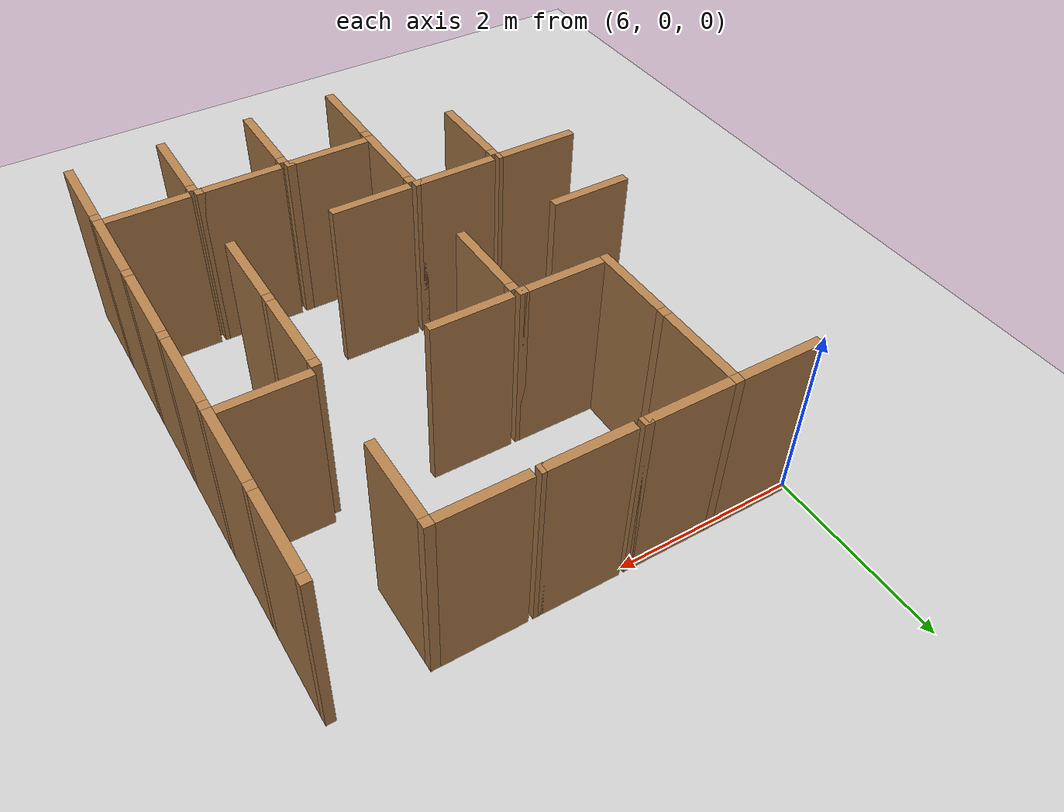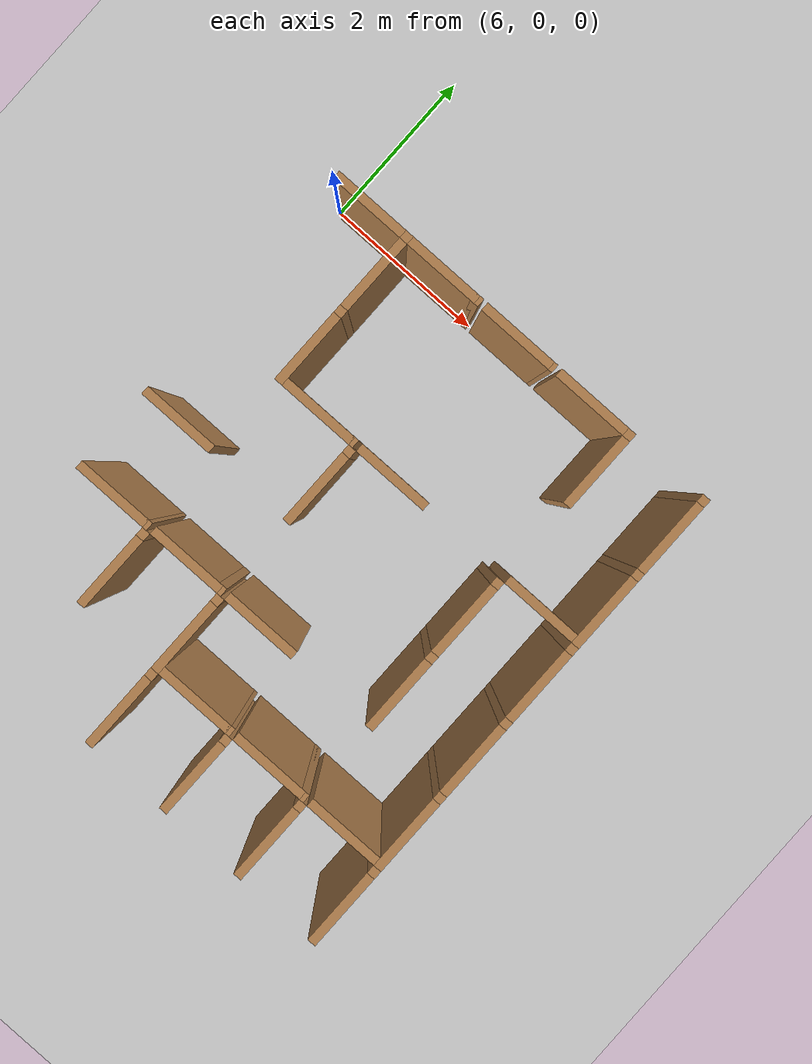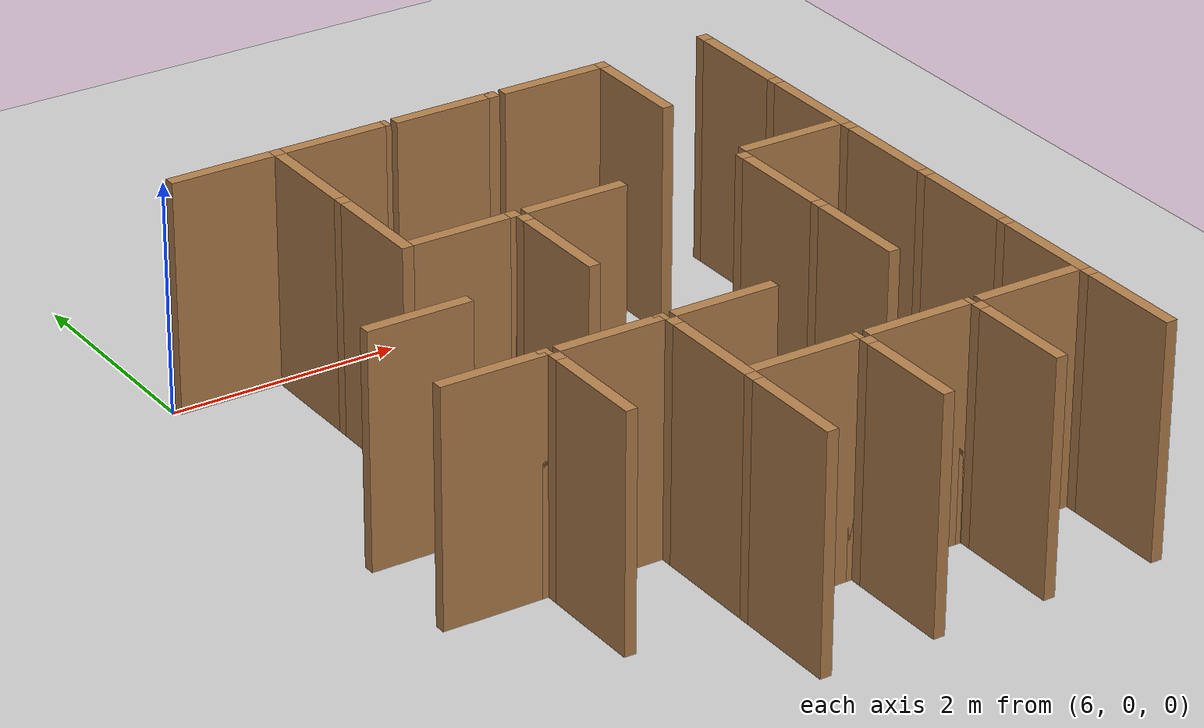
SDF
<sdf version="1.6">
 <world name="default">
  <include><uri>model://sun</uri></include>
  <model name="ground_plane">
   <static>true</static>
   <link name="link">
    <collision name="collision"><geometry><plane><size>12.0 12.0</size></plane></geometry></collision>
    <visual name="visual">
     <cast_shadows>false</cast_shadows>
     <geometry><plane><size>12.0 12.0</size></plane></geometry>
     <material>
      <script><uri>file://media/materials/scripts/gazebo.material</uri><name>Gazebo/Grey</name></script>
     </material>
    </visual>
   </link>
   <pose>6.0 -6.0 0 0 0 0</pose>
  </model>
  <model name="vwall_0_7">
   <pose>7.0 -0.5 1.0 0 0 0</pose>
   <link name="link">
    <collision name="collision"><geometry><box><size>0.1 0.9 2</size></box></geometry></collision>
    <visual name="visual">
     <geometry><box><size>0.1 0.9 2</size></box></geometry>
     <material>
      <script><uri>file://media/materials/scripts/gazebo.material</uri><name>Gazebo/Wood</name></script>
     </material>
    </visual>
   </link>
  </model>
  <model name="joint_7.0_0.0">
   <pose>7.0 0.0 1.0 0 0 0</pose>
   <link name="link">
    <collision name="collision"><geometry><box><size>0.1 0.1 2</size></box></geometry></collision>
    <visual name="visual">
     <geometry><box><size>0.1 0.1 2</size></box></geometry>
     <material>
      <script><uri>file://media/materials/scripts/gazebo.material</uri><name>Gazebo/Wood</name></script>
     </material>
    </visual>
   </link>
  </model>
  <model name="vwall_0_10">
   <pose>10.0 -0.5 1.0 0 0 0</pose>
   <link name="link">
    <collision name="collision"><geometry><box><size>0.1 0.9 2</size></box></geometry></collision>
    <visual name="visual">
     <geometry><box><size>0.1 0.9 2</size></box></geometry>
     <material>
      <script><uri>file://media/materials/scripts/gazebo.material</uri><name>Gazebo/Wood</name></script>
     </material>
    </visual>
   </link>
  </model>
  <model name="joint_10.0_0.0">
   <pose>10.0 0.0 1.0 0 0 0</pose>
   <link name="link">
    <collision name="collision"><geometry><box><size>0.1 0.1 2</size></box></geometry></collision>
    <visual name="visual">
     <geometry><box><size>0.1 0.1 2</size></box></geometry>
     <material>
      <script><uri>file://media/materials/scripts/gazebo.material</uri><name>Gazebo/Wood</name></script>
     </material>
    </visual>
   </link>
  </model>
  <model name="vwall_0_11">
   <pose>11.0 -0.5 1.0 0 0 0</pose>
   <link name="link">
    <collision name="collision"><geometry><box><size>0.1 0.9 2</size></box></geometry></collision>
    <visual name="visual">
     <geometry><box><size>0.1 0.9 2</size></box></geometry>
     <material>
      <script><uri>file://media/materials/scripts/gazebo.material</uri><name>Gazebo/Wood</name></script>
     </material>
    </visual>
   </link>
  </model>
  <model name="joint_11.0_0.0">
   <pose>11.0 0.0 1.0 0 0 0</pose>
   <link name="link">
    <collision name="collision"><geometry><box><size>0.1 0.1 2</size></box></geometry></collision>
    <visual name="visual">
     <geometry><box><size>0.1 0.1 2</size></box></geometry>
     <material>
      <script><uri>file://media/materials/scripts/gazebo.material</uri><name>Gazebo/Wood</name></script>
     </material>
    </visual>
   </link>
  </model>
  <model name="vwall_1_7">
   <pose>7.0 -1.5 1.0 0 0 0</pose>
   <link name="link">
    <collision name="collision"><geometry><box><size>0.1 0.9 2</size></box></geometry></collision>
    <visual name="visual">
     <geometry><box><size>0.1 0.9 2</size></box></geometry>
     <material>
      <script><uri>file://media/materials/scripts/gazebo.material</uri><name>Gazebo/Wood</name></script>
     </material>
    </visual>
   </link>
  </model>
  <model name="joint_7.0_-1.0">
   <pose>7.0 -1.0 1.0 0 0 0</pose>
   <link name="link">
    <collision name="collision"><geometry><box><size>0.1 0.1 2</size></box></geometry></collision>
    <visual name="visual">
     <geometry><box><size>0.1 0.1 2</size></box></geometry>
     <material>
      <script><uri>file://media/materials/scripts/gazebo.material</uri><name>Gazebo/Wood</name></script>
     </material>
    </visual>
   </link>
  </model>
  <model name="vwall_1_11">
   <pose>11.0 -1.5 1.0 0 0 0</pose>
   <link name="link">
    <collision name="collision"><geometry><box><size>0.1 0.9 2</size></box></geometry></collision>
    <visual name="visual">
     <geometry><box><size>0.1 0.9 2</size></box></geometry>
     <material>
      <script><uri>file://media/materials/scripts/gazebo.material</uri><name>Gazebo/Wood</name></script>
     </material>
    </visual>
   </link>
  </model>
  <model name="joint_11.0_-1.0">
   <pose>11.0 -1.0 1.0 0 0 0</pose>
   <link name="link">
    <collision name="collision"><geometry><box><size>0.1 0.1 2</size></box></geometry></collision>
    <visual name="visual">
     <geometry><box><size>0.1 0.1 2</size></box></geometry>
     <material>
      <script><uri>file://media/materials/scripts/gazebo.material</uri><name>Gazebo/Wood</name></script>
     </material>
    </visual>
   </link>
  </model>
  <model name="vwall_2_8">
   <pose>8.0 -2.5 1.0 0 0 0</pose>
   <link name="link">
    <collision name="collision"><geometry><box><size>0.1 0.9 2</size></box></geometry></collision>
    <visual name="visual">
     <geometry><box><size>0.1 0.9 2</size></box></geometry>
     <material>
      <script><uri>file://media/materials/scripts/gazebo.material</uri><name>Gazebo/Wood</name></script>
     </material>
    </visual>
   </link>
  </model>
  <model name="joint_8.0_-2.0">
   <pose>8.0 -2.0 1.0 0 0 0</pose>
   <link name="link">
    <collision name="collision"><geometry><box><size>0.1 0.1 2</size></box></geometry></collision>
    <visual name="visual">
     <geometry><box><size>0.1 0.1 2</size></box></geometry>
     <material>
      <script><uri>file://media/materials/scripts/gazebo.material</uri><name>Gazebo/Wood</name></script>
     </material>
    </visual>
   </link>
  </model>
  <model name="vwall_2_10">
   <pose>10.0 -2.5 1.0 0 0 0</pose>
   <link name="link">
    <collision name="collision"><geometry><box><size>0.1 0.9 2</size></box></geometry></collision>
    <visual name="visual">
     <geometry><box><size>0.1 0.9 2</size></box></geometry>
     <material>
      <script><uri>file://media/materials/scripts/gazebo.material</uri><name>Gazebo/Wood</name></script>
     </material>
    </visual>
   </link>
  </model>
  <model name="joint_10.0_-2.0">
   <pose>10.0 -2.0 1.0 0 0 0</pose>
   <link name="link">
    <collision name="collision"><geometry><box><size>0.1 0.1 2</size></box></geometry></collision>
    <visual name="visual">
     <geometry><box><size>0.1 0.1 2</size></box></geometry>
     <material>
      <script><uri>file://media/materials/scripts/gazebo.material</uri><name>Gazebo/Wood</name></script>
     </material>
    </visual>
   </link>
  </model>
  <model name="vwall_2_11">
   <pose>11.0 -2.5 1.0 0 0 0</pose>
   <link name="link">
    <collision name="collision"><geometry><box><size>0.1 0.9 2</size></box></geometry></collision>
    <visual name="visual">
     <geometry><box><size>0.1 0.9 2</size></box></geometry>
     <material>
      <script><uri>file://media/materials/scripts/gazebo.material</uri><name>Gazebo/Wood</name></script>
     </material>
    </visual>
   </link>
  </model>
  <model name="joint_11.0_-2.0">
   <pose>11.0 -2.0 1.0 0 0 0</pose>
   <link name="link">
    <collision name="collision"><geometry><box><size>0.1 0.1 2</size></box></geometry></collision>
    <visual name="visual">
     <geometry><box><size>0.1 0.1 2</size></box></geometry>
     <material>
      <script><uri>file://media/materials/scripts/gazebo.material</uri><name>Gazebo/Wood</name></script>
     </material>
    </visual>
   </link>
  </model>
  <model name="vwall_3_10">
   <pose>10.0 -3.5 1.0 0 0 0</pose>
   <link name="link">
    <collision name="collision"><geometry><box><size>0.1 0.9 2</size></box></geometry></collision>
    <visual name="visual">
     <geometry><box><size>0.1 0.9 2</size></box></geometry>
     <material>
      <script><uri>file://media/materials/scripts/gazebo.material</uri><name>Gazebo/Wood</name></script>
     </material>
    </visual>
   </link>
  </model>
  <model name="joint_10.0_-3.0">
   <pose>10.0 -3.0 1.0 0 0 0</pose>
   <link name="link">
    <collision name="collision"><geometry><box><size>0.1 0.1 2</size></box></geometry></collision>
    <visual name="visual">
     <geometry><box><size>0.1 0.1 2</size></box></geometry>
     <material>
      <script><uri>file://media/materials/scripts/gazebo.material</uri><name>Gazebo/Wood</name></script>
     </material>
    </visual>
   </link>
  </model>
  <model name="vwall_3_11">
   <pose>11.0 -3.5 1.0 0 0 0</pose>
   <link name="link">
    <collision name="collision"><geometry><box><size>0.1 0.9 2</size></box></geometry></collision>
    <visual name="visual">
     <geometry><box><size>0.1 0.9 2</size></box></geometry>
     <material>
      <script><uri>file://media/materials/scripts/gazebo.material</uri><name>Gazebo/Wood</name></script>
     </material>
    </visual>
   </link>
  </model>
  <model name="joint_11.0_-3.0">
   <pose>11.0 -3.0 1.0 0 0 0</pose>
   <link name="link">
    <collision name="collision"><geometry><box><size>0.1 0.1 2</size></box></geometry></collision>
    <visual name="visual">
     <geometry><box><size>0.1 0.1 2</size></box></geometry>
     <material>
      <script><uri>file://media/materials/scripts/gazebo.material</uri><name>Gazebo/Wood</name></script>
     </material>
    </visual>
   </link>
  </model>
  <model name="vwall_4_7">
   <pose>7.0 -4.5 1.0 0 0 0</pose>
   <link name="link">
    <collision name="collision"><geometry><box><size>0.1 0.9 2</size></box></geometry></collision>
    <visual name="visual">
     <geometry><box><size>0.1 0.9 2</size></box></geometry>
     <material>
      <script><uri>file://media/materials/scripts/gazebo.material</uri><name>Gazebo/Wood</name></script>
     </material>
    </visual>
   </link>
  </model>
  <model name="joint_7.0_-4.0">
   <pose>7.0 -4.0 1.0 0 0 0</pose>
   <link name="link">
    <collision name="collision"><geometry><box><size>0.1 0.1 2</size></box></geometry></collision>
    <visual name="visual">
     <geometry><box><size>0.1 0.1 2</size></box></geometry>
     <material>
      <script><uri>file://media/materials/scripts/gazebo.material</uri><name>Gazebo/Wood</name></script>
     </material>
    </visual>
   </link>
  </model>
  <model name="vwall_4_8">
   <pose>8.0 -4.5 1.0 0 0 0</pose>
   <link name="link">
    <collision name="collision"><geometry><box><size>0.1 0.9 2</size></box></geometry></collision>
    <visual name="visual">
     <geometry><box><size>0.1 0.9 2</size></box></geometry>
     <material>
      <script><uri>file://media/materials/scripts/gazebo.material</uri><name>Gazebo/Wood</name></script>
     </material>
    </visual>
   </link>
  </model>
  <model name="joint_8.0_-4.0">
   <pose>8.0 -4.0 1.0 0 0 0</pose>
   <link name="link">
    <collision name="collision"><geometry><box><size>0.1 0.1 2</size></box></geometry></collision>
    <visual name="visual">
     <geometry><box><size>0.1 0.1 2</size></box></geometry>
     <material>
      <script><uri>file://media/materials/scripts/gazebo.material</uri><name>Gazebo/Wood</name></script>
     </material>
    </visual>
   </link>
  </model>
  <model name="vwall_4_11">
   <pose>11.0 -4.5 1.0 0 0 0</pose>
   <link name="link">
    <collision name="collision"><geometry><box><size>0.1 0.9 2</size></box></geometry></collision>
    <visual name="visual">
     <geometry><box><size>0.1 0.9 2</size></box></geometry>
     <material>
      <script><uri>file://media/materials/scripts/gazebo.material</uri><name>Gazebo/Wood</name></script>
     </material>
    </visual>
   </link>
  </model>
  <model name="joint_11.0_-4.0">
   <pose>11.0 -4.0 1.0 0 0 0</pose>
   <link name="link">
    <collision name="collision"><geometry><box><size>0.1 0.1 2</size></box></geometry></collision>
    <visual name="visual">
     <geometry><box><size>0.1 0.1 2</size></box></geometry>
     <material>
      <script><uri>file://media/materials/scripts/gazebo.material</uri><name>Gazebo/Wood</name></script>
     </material>
    </visual>
   </link>
  </model>
  <model name="vwall_5_8">
   <pose>8.0 -5.5 1.0 0 0 0</pose>
   <link name="link">
    <collision name="collision"><geometry><box><size>0.1 0.9 2</size></box></geometry></collision>
    <visual name="visual">
     <geometry><box><size>0.1 0.9 2</size></box></geometry>
     <material>
      <script><uri>file://media/materials/scripts/gazebo.material</uri><name>Gazebo/Wood</name></script>
     </material>
    </visual>
   </link>
  </model>
  <model name="joint_8.0_-5.0">
   <pose>8.0 -5.0 1.0 0 0 0</pose>
   <link name="link">
    <collision name="collision"><geometry><box><size>0.1 0.1 2</size></box></geometry></collision>
    <visual name="visual">
     <geometry><box><size>0.1 0.1 2</size></box></geometry>
     <material>
      <script><uri>file://media/materials/scripts/gazebo.material</uri><name>Gazebo/Wood</name></script>
     </material>
    </visual>
   </link>
  </model>
  <model name="vwall_5_9">
   <pose>9.0 -5.5 1.0 0 0 0</pose>
   <link name="link">
    <collision name="collision"><geometry><box><size>0.1 0.9 2</size></box></geometry></collision>
    <visual name="visual">
     <geometry><box><size>0.1 0.9 2</size></box></geometry>
     <material>
      <script><uri>file://media/materials/scripts/gazebo.material</uri><name>Gazebo/Wood</name></script>
     </material>
    </visual>
   </link>
  </model>
  <model name="joint_9.0_-5.0">
   <pose>9.0 -5.0 1.0 0 0 0</pose>
   <link name="link">
    <collision name="collision"><geometry><box><size>0.1 0.1 2</size></box></geometry></collision>
    <visual name="visual">
     <geometry><box><size>0.1 0.1 2</size></box></geometry>
     <material>
      <script><uri>file://media/materials/scripts/gazebo.material</uri><name>Gazebo/Wood</name></script>
     </material>
    </visual>
   </link>
  </model>
  <model name="vwall_5_10">
   <pose>10.0 -5.5 1.0 0 0 0</pose>
   <link name="link">
    <collision name="collision"><geometry><box><size>0.1 0.9 2</size></box></geometry></collision>
    <visual name="visual">
     <geometry><box><size>0.1 0.9 2</size></box></geometry>
     <material>
      <script><uri>file://media/materials/scripts/gazebo.material</uri><name>Gazebo/Wood</name></script>
     </material>
    </visual>
   </link>
  </model>
  <model name="joint_10.0_-5.0">
   <pose>10.0 -5.0 1.0 0 0 0</pose>
   <link name="link">
    <collision name="collision"><geometry><box><size>0.1 0.1 2</size></box></geometry></collision>
    <visual name="visual">
     <geometry><box><size>0.1 0.1 2</size></box></geometry>
     <material>
      <script><uri>file://media/materials/scripts/gazebo.material</uri><name>Gazebo/Wood</name></script>
     </material>
    </visual>
   </link>
  </model>
  <model name="vwall_5_11">
   <pose>11.0 -5.5 1.0 0 0 0</pose>
   <link name="link">
    <collision name="collision"><geometry><box><size>0.1 0.9 2</size></box></geometry></collision>
    <visual name="visual">
     <geometry><box><size>0.1 0.9 2</size></box></geometry>
     <material>
      <script><uri>file://media/materials/scripts/gazebo.material</uri><name>Gazebo/Wood</name></script>
     </material>
    </visual>
   </link>
  </model>
  <model name="joint_11.0_-5.0">
   <pose>11.0 -5.0 1.0 0 0 0</pose>
   <link name="link">
    <collision name="collision"><geometry><box><size>0.1 0.1 2</size></box></geometry></collision>
    <visual name="visual">
     <geometry><box><size>0.1 0.1 2</size></box></geometry>
     <material>
      <script><uri>file://media/materials/scripts/gazebo.material</uri><name>Gazebo/Wood</name></script>
     </material>
    </visual>
   </link>
  </model>
  <model name="hwall_0_6">
   <pose>6.5 0.0 1.0 0 0 0</pose>
   <link name="link">
    <collision name="collision"><geometry><box><size>0.9 0.1 2</size></box></geometry></collision>
    <visual name="visual">
     <geometry><box><size>0.9 0.1 2</size></box></geometry>
     <material>
      <script><uri>file://media/materials/scripts/gazebo.material</uri><name>Gazebo/Wood</name></script>
     </material>
    </visual>
   </link>
  </model>
  <model name="hwall_0_7">
   <pose>7.5 0.0 1.0 0 0 0</pose>
   <link name="link">
    <collision name="collision"><geometry><box><size>0.9 0.1 2</size></box></geometry></collision>
    <visual name="visual">
     <geometry><box><size>0.9 0.1 2</size></box></geometry>
     <material>
      <script><uri>file://media/materials/scripts/gazebo.material</uri><name>Gazebo/Wood</name></script>
     </material>
    </visual>
   </link>
  </model>
  <model name="joint_7.95_0.0">
   <pose>7.95 0.0 1.0 0 0 0</pose>
   <link name="link">
    <collision name="collision"><geometry><box><size>0.1 0.1 2</size></box></geometry></collision>
    <visual name="visual">
     <geometry><box><size>0.1 0.1 2</size></box></geometry>
     <material>
      <script><uri>file://media/materials/scripts/gazebo.material</uri><name>Gazebo/Wood</name></script>
     </material>
    </visual>
   </link>
  </model>
  <model name="hwall_0_8">
   <pose>8.5 0.0 1.0 0 0 0</pose>
   <link name="link">
    <collision name="collision"><geometry><box><size>0.9 0.1 2</size></box></geometry></collision>
    <visual name="visual">
     <geometry><box><size>0.9 0.1 2</size></box></geometry>
     <material>
      <script><uri>file://media/materials/scripts/gazebo.material</uri><name>Gazebo/Wood</name></script>
     </material>
    </visual>
   </link>
  </model>
  <model name="joint_8.95_0.0">
   <pose>8.95 0.0 1.0 0 0 0</pose>
   <link name="link">
    <collision name="collision"><geometry><box><size>0.1 0.1 2</size></box></geometry></collision>
    <visual name="visual">
     <geometry><box><size>0.1 0.1 2</size></box></geometry>
     <material>
      <script><uri>file://media/materials/scripts/gazebo.material</uri><name>Gazebo/Wood</name></script>
     </material>
    </visual>
   </link>
  </model>
  <model name="hwall_0_9">
   <pose>9.5 0.0 1.0 0 0 0</pose>
   <link name="link">
    <collision name="collision"><geometry><box><size>0.9 0.1 2</size></box></geometry></collision>
    <visual name="visual">
     <geometry><box><size>0.9 0.1 2</size></box></geometry>
     <material>
      <script><uri>file://media/materials/scripts/gazebo.material</uri><name>Gazebo/Wood</name></script>
     </material>
    </visual>
   </link>
  </model>
  <model name="hwall_1_7">
   <pose>7.5 -1.9 1.0 0 0 0</pose>
   <link name="link">
    <collision name="collision"><geometry><box><size>0.9 0.1 2</size></box></geometry></collision>
    <visual name="visual">
     <geometry><box><size>0.9 0.1 2</size></box></geometry>
     <material>
      <script><uri>file://media/materials/scripts/gazebo.material</uri><name>Gazebo/Wood</name></script>
     </material>
    </visual>
   </link>
  </model>
  <model name="joint_7.95_-1.9">
   <pose>7.95 -1.9 1.0 0 0 0</pose>
   <link name="link">
    <collision name="collision"><geometry><box><size>0.1 0.1 2</size></box></geometry></collision>
    <visual name="visual">
     <geometry><box><size>0.1 0.1 2</size></box></geometry>
     <material>
      <script><uri>file://media/materials/scripts/gazebo.material</uri><name>Gazebo/Wood</name></script>
     </material>
    </visual>
   </link>
  </model>
  <model name="hwall_1_8">
   <pose>8.5 -1.9 1.0 0 0 0</pose>
   <link name="link">
    <collision name="collision"><geometry><box><size>0.9 0.1 2</size></box></geometry></collision>
    <visual name="visual">
     <geometry><box><size>0.9 0.1 2</size></box></geometry>
     <material>
      <script><uri>file://media/materials/scripts/gazebo.material</uri><name>Gazebo/Wood</name></script>
     </material>
    </visual>
   </link>
  </model>
  <model name="hwall_1_10">
   <pose>10.5 -1.9 1.0 0 0 0</pose>
   <link name="link">
    <collision name="collision"><geometry><box><size>0.9 0.1 2</size></box></geometry></collision>
    <visual name="visual">
     <geometry><box><size>0.9 0.1 2</size></box></geometry>
     <material>
      <script><uri>file://media/materials/scripts/gazebo.material</uri><name>Gazebo/Wood</name></script>
     </material>
    </visual>
   </link>
  </model>
  <model name="hwall_2_6">
   <pose>6.5 -2.9 1.0 0 0 0</pose>
   <link name="link">
    <collision name="collision"><geometry><box><size>0.9 0.1 2</size></box></geometry></collision>
    <visual name="visual">
     <geometry><box><size>0.9 0.1 2</size></box></geometry>
     <material>
      <script><uri>file://media/materials/scripts/gazebo.material</uri><name>Gazebo/Wood</name></script>
     </material>
    </visual>
   </link>
  </model>
  <model name="hwall_3_6">
   <pose>6.5 -3.9 1.0 0 0 0</pose>
   <link name="link">
    <collision name="collision"><geometry><box><size>0.9 0.1 2</size></box></geometry></collision>
    <visual name="visual">
     <geometry><box><size>0.9 0.1 2</size></box></geometry>
     <material>
      <script><uri>file://media/materials/scripts/gazebo.material</uri><name>Gazebo/Wood</name></script>
     </material>
    </visual>
   </link>
  </model>
  <model name="joint_6.95_-3.9">
   <pose>6.95 -3.9 1.0 0 0 0</pose>
   <link name="link">
    <collision name="collision"><geometry><box><size>0.1 0.1 2</size></box></geometry></collision>
    <visual name="visual">
     <geometry><box><size>0.1 0.1 2</size></box></geometry>
     <material>
      <script><uri>file://media/materials/scripts/gazebo.material</uri><name>Gazebo/Wood</name></script>
     </material>
    </visual>
   </link>
  </model>
  <model name="hwall_3_7">
   <pose>7.5 -3.9 1.0 0 0 0</pose>
   <link name="link">
    <collision name="collision"><geometry><box><size>0.9 0.1 2</size></box></geometry></collision>
    <visual name="visual">
     <geometry><box><size>0.9 0.1 2</size></box></geometry>
     <material>
      <script><uri>file://media/materials/scripts/gazebo.material</uri><name>Gazebo/Wood</name></script>
     </material>
    </visual>
   </link>
  </model>
  <model name="joint_7.95_-3.9">
   <pose>7.95 -3.9 1.0 0 0 0</pose>
   <link name="link">
    <collision name="collision"><geometry><box><size>0.1 0.1 2</size></box></geometry></collision>
    <visual name="visual">
     <geometry><box><size>0.1 0.1 2</size></box></geometry>
     <material>
      <script><uri>file://media/materials/scripts/gazebo.material</uri><name>Gazebo/Wood</name></script>
     </material>
    </visual>
   </link>
  </model>
  <model name="hwall_3_8">
   <pose>8.5 -3.9 1.0 0 0 0</pose>
   <link name="link">
    <collision name="collision"><geometry><box><size>0.9 0.1 2</size></box></geometry></collision>
    <visual name="visual">
     <geometry><box><size>0.9 0.1 2</size></box></geometry>
     <material>
      <script><uri>file://media/materials/scripts/gazebo.material</uri><name>Gazebo/Wood</name></script>
     </material>
    </visual>
   </link>
  </model>
  <model name="hwall_4_8">
   <pose>8.5 -4.9 1.0 0 0 0</pose>
   <link name="link">
    <collision name="collision"><geometry><box><size>0.9 0.1 2</size></box></geometry></collision>
    <visual name="visual">
     <geometry><box><size>0.9 0.1 2</size></box></geometry>
     <material>
      <script><uri>file://media/materials/scripts/gazebo.material</uri><name>Gazebo/Wood</name></script>
     </material>
    </visual>
   </link>
  </model>
  <model name="joint_8.95_-4.9">
   <pose>8.95 -4.9 1.0 0 0 0</pose>
   <link name="link">
    <collision name="collision"><geometry><box><size>0.1 0.1 2</size></box></geometry></collision>
    <visual name="visual">
     <geometry><box><size>0.1 0.1 2</size></box></geometry>
     <material>
      <script><uri>file://media/materials/scripts/gazebo.material</uri><name>Gazebo/Wood</name></script>
     </material>
    </visual>
   </link>
  </model>
  <model name="hwall_4_9">
   <pose>9.5 -4.9 1.0 0 0 0</pose>
   <link name="link">
    <collision name="collision"><geometry><box><size>0.9 0.1 2</size></box></geometry></collision>
    <visual name="visual">
     <geometry><box><size>0.9 0.1 2</size></box></geometry>
     <material>
      <script><uri>file://media/materials/scripts/gazebo.material</uri><name>Gazebo/Wood</name></script>
     </material>
    </visual>
   </link>
  </model>
  <model name="joint_9.95_-4.9">
   <pose>9.95 -4.9 1.0 0 0 0</pose>
   <link name="link">
    <collision name="collision"><geometry><box><size>0.1 0.1 2</size></box></geometry></collision>
    <visual name="visual">
     <geometry><box><size>0.1 0.1 2</size></box></geometry>
     <material>
      <script><uri>file://media/materials/scripts/gazebo.material</uri><name>Gazebo/Wood</name></script>
     </material>
    </visual>
   </link>
  </model>
  <model name="hwall_4_10">
   <pose>10.5 -4.9 1.0 0 0 0</pose>
   <link name="link">
    <collision name="collision"><geometry><box><size>0.9 0.1 2</size></box></geometry></collision>
    <visual name="visual">
     <geometry><box><size>0.9 0.1 2</size></box></geometry>
     <material>
      <script><uri>file://media/materials/scripts/gazebo.material</uri><name>Gazebo/Wood</name></script>
     </material>
    </visual>
   </link>
  </model>
 </world>
</sdf>
